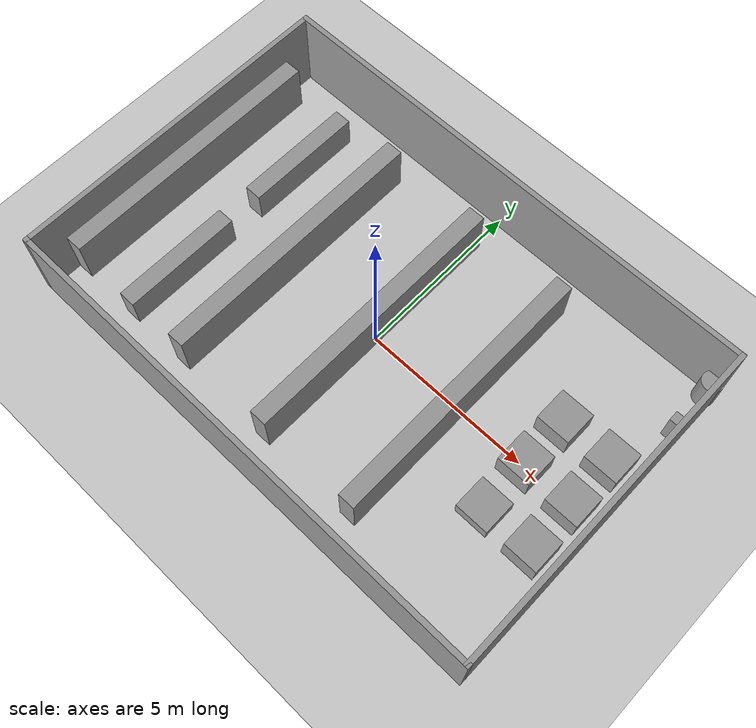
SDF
<sdf version="1.7">
 <world name="default">
  <model name="ground_plane">
   <static>1</static>
   <link name="link">
    <collision name="collision">
     <geometry><plane><normal>0 0 1</normal><size>100 100</size></plane></geometry>
     <surface>
      <contact><collide_bitmask>65535</collide_bitmask></contact>
      <friction><ode><mu>100</mu><mu2>50</mu2></ode></friction>
     </surface>
    </collision>
    <visual name="visual">
     <cast_shadows>0</cast_shadows>
     <geometry><plane><normal>0 0 1</normal><size>100 100</size></plane></geometry>
     <material>
      <script><uri>file://media/materials/scripts/gazebo.material</uri><name>Gazebo/Grey</name></script>
     </material>
    </visual>
   </link>
  </model>
  <model name="model_wall">
   <link name="Wall_0">
    <collision name="Wall_0_Collision">
     <geometry><box><size>10 0.15 2.5</size></box></geometry>
     <pose>0 0 1.25 0 -0 0</pose>
    </collision>
    <visual name="Wall_0_Visual">
     <pose>0 0 1.25 0 -0 0</pose>
     <geometry><box><size>10 0.15 2.5</size></box></geometry>
     <material>
      <script><uri>file://media/materials/scripts/gazebo.material</uri><name>Gazebo/Grey</name></script>
      <ambient>1 1 1 1</ambient>
     </material>
     <meta><layer>0</layer></meta>
    </visual>
    <pose>-7.425 0 0 0 -0 1.5708</pose>
   </link>
   <link name="Wall_4">
    <collision name="Wall_4_Collision">
     <geometry><box><size>15 0.15 2.5</size></box></geometry>
     <pose>0 0 1.25 0 -0 0</pose>
    </collision>
    <visual name="Wall_4_Visual">
     <pose>0 0 1.25 0 -0 0</pose>
     <geometry><box><size>15 0.15 2.5</size></box></geometry>
     <material>
      <script><uri>file://media/materials/scripts/gazebo.material</uri><name>Gazebo/Grey</name></script>
      <ambient>1 1 1 1</ambient>
     </material>
     <meta><layer>0</layer></meta>
    </visual>
    <pose>0 4.925 0 0 -0 0</pose>
   </link>
   <link name="Wall_7">
    <collision name="Wall_7_Collision">
     <geometry><box><size>10 0.15 2.5</size></box></geometry>
     <pose>0 0 1.25 0 -0 0</pose>
    </collision>
    <visual name="Wall_7_Visual">
     <pose>0 0 1.25 0 -0 0</pose>
     <geometry><box><size>10 0.15 2.5</size></box></geometry>
     <material>
      <script><uri>file://media/materials/scripts/gazebo.material</uri><name>Gazebo/Grey</name></script>
      <ambient>1 1 1 1</ambient>
     </material>
     <meta><layer>0</layer></meta>
    </visual>
    <pose>7.425 0 0 0 -0 -1.5708</pose>
   </link>
   <link name="Wall_8">
    <collision name="Wall_8_Collision">
     <geometry><box><size>15 0.15 2.5</size></box></geometry>
     <pose>0 0 1.25 0 -0 0</pose>
    </collision>
    <visual name="Wall_8_Visual">
     <pose>0 0 1.25 0 -0 0</pose>
     <geometry><box><size>15 0.15 2.5</size></box></geometry>
     <material>
      <script><uri>file://media/materials/scripts/gazebo.material</uri><name>Gazebo/Grey</name></script>
      <ambient>1 1 1 1</ambient>
     </material>
     <meta><layer>0</layer></meta>
    </visual>
    <pose>0 -4.925 0 0 -0 3.14159</pose>
   </link>
   <static>1</static>
  </model>
  <model name="Untitled">
   <link name="link_0">
    <inertial>
     <mass>1000</mass>
     <inertia><ixx>1666.67</ixx><ixy>0</ixy><ixz>0</ixz><iyy>1666.67</iyy><iyz>0</iyz><izz>1666.67</izz></inertia>
    </inertial>
    <pose>-7.1 0 0.75 0 -0 0</pose>
    <visual name="visual">
     <geometry><box><size>0.5 8 1.5</size></box></geometry>
     <material>
      <lighting>1</lighting>
      <script><uri>file://media/materials/scripts/gazebo.material</uri><name>Gazebo/Grey</name></script>
      <shader type="pixel"><normal_map>__default__</normal_map></shader>
      <ambient>0.3 0.3 0.3 1</ambient>
      <diffuse>0.7 0.7 0.7 1</diffuse>
      <specular>0.01 0.01 0.01 1</specular>
      <emissive>0 0 0 1</emissive>
     </material>
    </visual>
    <collision name="collision">
     <geometry><box><size>0.5 8 1.5</size></box></geometry>
     <surface>
      <friction>
       <ode><mu>1</mu><mu2>1</mu2><fdir1>0 0 0</fdir1><slip1>1</slip1><slip2>1</slip2></ode>
       <torsional>
        <coefficient>1</coefficient>
        <patch_radius>0</patch_radius>
        <surface_radius>0</surface_radius>
        <use_patch_radius>1</use_patch_radius>
        <ode><slip>0</slip></ode>
       </torsional>
      </friction>
      <bounce><restitution_coefficient>0</restitution_coefficient><threshold>1e+06</threshold></bounce>
      <contact>
       <collide_without_contact>0</collide_without_contact>
       <collide_without_contact_bitmask>1</collide_without_contact_bitmask>
       <collide_bitmask>1</collide_bitmask>
       <ode>
        <soft_cfm>0</soft_cfm>
        <soft_erp>0.2</soft_erp>
        <kp>1e+13</kp>
        <kd>1</kd>
        <max_vel>0.01</max_vel>
        <min_depth>0</min_depth>
       </ode>
       <bullet>
        <split_impulse>1</split_impulse>
        <split_impulse_penetration_threshold>-0.01</split_impulse_penetration_threshold>
        <soft_cfm>0</soft_cfm>
        <soft_erp>0.2</soft_erp>
        <kp>1e+13</kp>
        <kd>1</kd>
       </bullet>
      </contact>
     </surface>
    </collision>
   </link>
   <link name="link_1">
    <inertial>
     <mass>1000</mass>
     <inertia><ixx>1666.67</ixx><ixy>0</ixy><ixz>0</ixz><iyy>1666.67</iyy><iyz>0</iyz><izz>1666.67</izz></inertia>
    </inertial>
    <pose>-5.125 2.25 0.5 0 -0 0</pose>
    <visual name="visual">
     <geometry><box><size>0.5 3.5 1</size></box></geometry>
     <material>
      <lighting>1</lighting>
      <script><uri>file://media/materials/scripts/gazebo.material</uri><name>Gazebo/Grey</name></script>
      <shader type="pixel"><normal_map>__default__</normal_map></shader>
      <ambient>0.3 0.3 0.3 1</ambient>
      <diffuse>0.7 0.7 0.7 1</diffuse>
      <specular>0.01 0.01 0.01 1</specular>
      <emissive>0 0 0 1</emissive>
     </material>
    </visual>
    <collision name="collision">
     <geometry><box><size>0.5 3.5 1</size></box></geometry>
     <surface>
      <friction>
       <ode><mu>1</mu><mu2>1</mu2><fdir1>0 0 0</fdir1><slip1>1</slip1><slip2>1</slip2></ode>
       <torsional>
        <coefficient>1</coefficient>
        <patch_radius>0</patch_radius>
        <surface_radius>0</surface_radius>
        <use_patch_radius>1</use_patch_radius>
        <ode><slip>0</slip></ode>
       </torsional>
      </friction>
      <bounce><restitution_coefficient>0</restitution_coefficient><threshold>1e+06</threshold></bounce>
      <contact>
       <collide_without_contact>0</collide_without_contact>
       <collide_without_contact_bitmask>1</collide_without_contact_bitmask>
       <collide_bitmask>1</collide_bitmask>
       <ode>
        <soft_cfm>0</soft_cfm>
        <soft_erp>0.2</soft_erp>
        <kp>1e+13</kp>
        <kd>1</kd>
        <max_vel>0.01</max_vel>
        <min_depth>0</min_depth>
       </ode>
       <bullet>
        <split_impulse>1</split_impulse>
        <split_impulse_penetration_threshold>-0.01</split_impulse_penetration_threshold>
        <soft_cfm>0</soft_cfm>
        <soft_erp>0.2</soft_erp>
        <kp>1e+13</kp>
        <kd>1</kd>
       </bullet>
      </contact>
     </surface>
    </collision>
   </link>
   <link name="link_10">
    <inertial>
     <mass>1000</mass>
     <inertia><ixx>1666.67</ixx><ixy>0</ixy><ixz>0</ixz><iyy>1666.67</iyy><iyz>0</iyz><izz>1666.67</izz></inertia>
    </inertial>
    <pose>5.125 -1.5 0.0375 0 -0 0</pose>
    <visual name="visual">
     <geometry><box><size>1 1 0.75</size></box></geometry>
     <material>
      <lighting>1</lighting>
      <script><uri>file://media/materials/scripts/gazebo.material</uri><name>Gazebo/Grey</name></script>
      <shader type="pixel"><normal_map>__default__</normal_map></shader>
      <ambient>0.3 0.3 0.3 1</ambient>
      <diffuse>0.7 0.7 0.7 1</diffuse>
      <specular>0.01 0.01 0.01 1</specular>
      <emissive>0 0 0 1</emissive>
     </material>
    </visual>
    <collision name="collision">
     <geometry><box><size>1 1 0.75</size></box></geometry>
     <surface>
      <friction>
       <ode><mu>1</mu><mu2>1</mu2><fdir1>0 0 0</fdir1><slip1>1</slip1><slip2>1</slip2></ode>
       <torsional>
        <coefficient>1</coefficient>
        <patch_radius>0</patch_radius>
        <surface_radius>0</surface_radius>
        <use_patch_radius>1</use_patch_radius>
        <ode><slip>0</slip></ode>
       </torsional>
      </friction>
      <bounce><restitution_coefficient>0</restitution_coefficient><threshold>1e+06</threshold></bounce>
      <contact>
       <collide_without_contact>0</collide_without_contact>
       <collide_without_contact_bitmask>1</collide_without_contact_bitmask>
       <collide_bitmask>1</collide_bitmask>
       <ode>
        <soft_cfm>0</soft_cfm>
        <soft_erp>0.2</soft_erp>
        <kp>1e+13</kp>
        <kd>1</kd>
        <max_vel>0.01</max_vel>
        <min_depth>0</min_depth>
       </ode>
       <bullet>
        <split_impulse>1</split_impulse>
        <split_impulse_penetration_threshold>-0.01</split_impulse_penetration_threshold>
        <soft_cfm>0</soft_cfm>
        <soft_erp>0.2</soft_erp>
        <kp>1e+13</kp>
        <kd>1</kd>
       </bullet>
      </contact>
     </surface>
    </collision>
   </link>
   <link name="link_11">
    <inertial>
     <mass>1000</mass>
     <inertia><ixx>1666.67</ixx><ixy>0</ixy><ixz>0</ixz><iyy>1666.67</iyy><iyz>0</iyz><izz>1666.67</izz></inertia>
    </inertial>
    <pose>6.625 -1.5 0.375 0 -0 0</pose>
    <visual name="visual">
     <geometry><box><size>1 1 0.75</size></box></geometry>
     <material>
      <lighting>1</lighting>
      <script><uri>file://media/materials/scripts/gazebo.material</uri><name>Gazebo/Grey</name></script>
      <shader type="pixel"><normal_map>__default__</normal_map></shader>
      <ambient>0.3 0.3 0.3 1</ambient>
      <diffuse>0.7 0.7 0.7 1</diffuse>
      <specular>0.01 0.01 0.01 1</specular>
      <emissive>0 0 0 1</emissive>
     </material>
    </visual>
    <collision name="collision">
     <geometry><box><size>1 1 0.75</size></box></geometry>
     <surface>
      <friction>
       <ode><mu>1</mu><mu2>1</mu2><fdir1>0 0 0</fdir1><slip1>1</slip1><slip2>1</slip2></ode>
       <torsional>
        <coefficient>1</coefficient>
        <patch_radius>0</patch_radius>
        <surface_radius>0</surface_radius>
        <use_patch_radius>1</use_patch_radius>
        <ode><slip>0</slip></ode>
       </torsional>
      </friction>
      <bounce><restitution_coefficient>0</restitution_coefficient><threshold>1e+06</threshold></bounce>
      <contact>
       <collide_without_contact>0</collide_without_contact>
       <collide_without_contact_bitmask>1</collide_without_contact_bitmask>
       <collide_bitmask>1</collide_bitmask>
       <ode>
        <soft_cfm>0</soft_cfm>
        <soft_erp>0.2</soft_erp>
        <kp>1e+13</kp>
        <kd>1</kd>
        <max_vel>0.01</max_vel>
        <min_depth>0</min_depth>
       </ode>
       <bullet>
        <split_impulse>1</split_impulse>
        <split_impulse_penetration_threshold>-0.01</split_impulse_penetration_threshold>
        <soft_cfm>0</soft_cfm>
        <soft_erp>0.2</soft_erp>
        <kp>1e+13</kp>
        <kd>1</kd>
       </bullet>
      </contact>
     </surface>
    </collision>
   </link>
   <link name="link_2">
    <inertial>
     <mass>1000</mass>
     <inertia><ixx>1666.67</ixx><ixy>0</ixy><ixz>0</ixz><iyy>1666.67</iyy><iyz>0</iyz><izz>1666.67</izz></inertia>
    </inertial>
    <pose>-5.125 -2.25 0.5 0 -0 0</pose>
    <visual name="visual">
     <geometry><box><size>0.5 3.5 1</size></box></geometry>
     <material>
      <lighting>1</lighting>
      <script><uri>file://media/materials/scripts/gazebo.material</uri><name>Gazebo/Grey</name></script>
      <shader type="pixel"><normal_map>__default__</normal_map></shader>
      <ambient>0.3 0.3 0.3 1</ambient>
      <diffuse>0.7 0.7 0.7 1</diffuse>
      <specular>0.01 0.01 0.01 1</specular>
      <emissive>0 0 0 1</emissive>
     </material>
    </visual>
    <collision name="collision">
     <geometry><box><size>0.5 3.5 1</size></box></geometry>
     <surface>
      <friction>
       <ode><mu>1</mu><mu2>1</mu2><fdir1>0 0 0</fdir1><slip1>1</slip1><slip2>1</slip2></ode>
       <torsional>
        <coefficient>1</coefficient>
        <patch_radius>0</patch_radius>
        <surface_radius>0</surface_radius>
        <use_patch_radius>1</use_patch_radius>
        <ode><slip>0</slip></ode>
       </torsional>
      </friction>
      <bounce><restitution_coefficient>0</restitution_coefficient><threshold>1e+06</threshold></bounce>
      <contact>
       <collide_without_contact>0</collide_without_contact>
       <collide_without_contact_bitmask>1</collide_without_contact_bitmask>
       <collide_bitmask>1</collide_bitmask>
       <ode>
        <soft_cfm>0</soft_cfm>
        <soft_erp>0.2</soft_erp>
        <kp>1e+13</kp>
        <kd>1</kd>
        <max_vel>0.01</max_vel>
        <min_depth>0</min_depth>
       </ode>
       <bullet>
        <split_impulse>1</split_impulse>
        <split_impulse_penetration_threshold>-0.01</split_impulse_penetration_threshold>
        <soft_cfm>0</soft_cfm>
        <soft_erp>0.2</soft_erp>
        <kp>1e+13</kp>
        <kd>1</kd>
       </bullet>
      </contact>
     </surface>
    </collision>
   </link>
   <link name="link_3">
    <inertial>
     <mass>1000</mass>
     <inertia><ixx>1666.67</ixx><ixy>0</ixy><ixz>0</ixz><iyy>1666.67</iyy><iyz>0</iyz><izz>1666.67</izz></inertia>
    </inertial>
    <pose>-3.125 0 0.75 0 -0 0</pose>
    <visual name="visual">
     <geometry><box><size>0.5 8 1.5</size></box></geometry>
     <material>
      <lighting>1</lighting>
      <script><uri>file://media/materials/scripts/gazebo.material</uri><name>Gazebo/Grey</name></script>
      <shader type="pixel"><normal_map>__default__</normal_map></shader>
      <ambient>0.3 0.3 0.3 1</ambient>
      <diffuse>0.7 0.7 0.7 1</diffuse>
      <specular>0.01 0.01 0.01 1</specular>
      <emissive>0 0 0 1</emissive>
     </material>
    </visual>
    <collision name="collision">
     <geometry><box><size>0.5 8 1.5</size></box></geometry>
     <surface>
      <friction>
       <ode><mu>1</mu><mu2>1</mu2><fdir1>0 0 0</fdir1><slip1>1</slip1><slip2>1</slip2></ode>
       <torsional>
        <coefficient>1</coefficient>
        <patch_radius>0</patch_radius>
        <surface_radius>0</surface_radius>
        <use_patch_radius>1</use_patch_radius>
        <ode><slip>0</slip></ode>
       </torsional>
      </friction>
      <bounce><restitution_coefficient>0</restitution_coefficient><threshold>1e+06</threshold></bounce>
      <contact>
       <collide_without_contact>0</collide_without_contact>
       <collide_without_contact_bitmask>1</collide_without_contact_bitmask>
       <collide_bitmask>1</collide_bitmask>
       <ode>
        <soft_cfm>0</soft_cfm>
        <soft_erp>0.2</soft_erp>
        <kp>1e+13</kp>
        <kd>1</kd>
        <max_vel>0.01</max_vel>
        <min_depth>0</min_depth>
       </ode>
       <bullet>
        <split_impulse>1</split_impulse>
        <split_impulse_penetration_threshold>-0.01</split_impulse_penetration_threshold>
        <soft_cfm>0</soft_cfm>
        <soft_erp>0.2</soft_erp>
        <kp>1e+13</kp>
        <kd>1</kd>
       </bullet>
      </contact>
     </surface>
    </collision>
   </link>
   <link name="link_4">
    <inertial>
     <mass>1000</mass>
     <inertia><ixx>1666.67</ixx><ixy>0</ixy><ixz>0</ixz><iyy>1666.67</iyy><iyz>0</iyz><izz>1666.67</izz></inertia>
    </inertial>
    <pose>-0.125 0 0.75 0 -0 0</pose>
    <visual name="visual">
     <geometry><box><size>0.5 8 1.5</size></box></geometry>
     <material>
      <lighting>1</lighting>
      <script><uri>file://media/materials/scripts/gazebo.material</uri><name>Gazebo/Grey</name></script>
      <shader type="pixel"><normal_map>__default__</normal_map></shader>
      <ambient>0.3 0.3 0.3 1</ambient>
      <diffuse>0.7 0.7 0.7 1</diffuse>
      <specular>0.01 0.01 0.01 1</specular>
      <emissive>0 0 0 1</emissive>
     </material>
    </visual>
    <collision name="collision">
     <geometry><box><size>0.5 8 1.5</size></box></geometry>
     <surface>
      <friction>
       <ode><mu>1</mu><mu2>1</mu2><fdir1>0 0 0</fdir1><slip1>1</slip1><slip2>1</slip2></ode>
       <torsional>
        <coefficient>1</coefficient>
        <patch_radius>0</patch_radius>
        <surface_radius>0</surface_radius>
        <use_patch_radius>1</use_patch_radius>
        <ode><slip>0</slip></ode>
       </torsional>
      </friction>
      <bounce><restitution_coefficient>0</restitution_coefficient><threshold>1e+06</threshold></bounce>
      <contact>
       <collide_without_contact>0</collide_without_contact>
       <collide_without_contact_bitmask>1</collide_without_contact_bitmask>
       <collide_bitmask>1</collide_bitmask>
       <ode>
        <soft_cfm>0</soft_cfm>
        <soft_erp>0.2</soft_erp>
        <kp>1e+13</kp>
        <kd>1</kd>
        <max_vel>0.01</max_vel>
        <min_depth>0</min_depth>
       </ode>
       <bullet>
        <split_impulse>1</split_impulse>
        <split_impulse_penetration_threshold>-0.01</split_impulse_penetration_threshold>
        <soft_cfm>0</soft_cfm>
        <soft_erp>0.2</soft_erp>
        <kp>1e+13</kp>
        <kd>1</kd>
       </bullet>
      </contact>
     </surface>
    </collision>
   </link>
   <link name="link_5">
    <inertial>
     <mass>1000</mass>
     <inertia><ixx>1666.67</ixx><ixy>0</ixy><ixz>0</ixz><iyy>1666.67</iyy><iyz>0</iyz><izz>1666.67</izz></inertia>
    </inertial>
    <pose>2.875 0 0.75 0 -0 0</pose>
    <visual name="visual">
     <geometry><box><size>0.5 8 1.5</size></box></geometry>
     <material>
      <lighting>1</lighting>
      <script><uri>file://media/materials/scripts/gazebo.material</uri><name>Gazebo/Grey</name></script>
      <shader type="pixel"><normal_map>__default__</normal_map></shader>
      <ambient>0.3 0.3 0.3 1</ambient>
      <diffuse>0.7 0.7 0.7 1</diffuse>
      <specular>0.01 0.01 0.01 1</specular>
      <emissive>0 0 0 1</emissive>
     </material>
    </visual>
    <collision name="collision">
     <geometry><box><size>0.5 8 1.5</size></box></geometry>
     <surface>
      <friction>
       <ode><mu>1</mu><mu2>1</mu2><fdir1>0 0 0</fdir1><slip1>1</slip1><slip2>1</slip2></ode>
       <torsional>
        <coefficient>1</coefficient>
        <patch_radius>0</patch_radius>
        <surface_radius>0</surface_radius>
        <use_patch_radius>1</use_patch_radius>
        <ode><slip>0</slip></ode>
       </torsional>
      </friction>
      <bounce><restitution_coefficient>0</restitution_coefficient><threshold>1e+06</threshold></bounce>
      <contact>
       <collide_without_contact>0</collide_without_contact>
       <collide_without_contact_bitmask>1</collide_without_contact_bitmask>
       <collide_bitmask>1</collide_bitmask>
       <ode>
        <soft_cfm>0</soft_cfm>
        <soft_erp>0.2</soft_erp>
        <kp>1e+13</kp>
        <kd>1</kd>
        <max_vel>0.01</max_vel>
        <min_depth>0</min_depth>
       </ode>
       <bullet>
        <split_impulse>1</split_impulse>
        <split_impulse_penetration_threshold>-0.01</split_impulse_penetration_threshold>
        <soft_cfm>0</soft_cfm>
        <soft_erp>0.2</soft_erp>
        <kp>1e+13</kp>
        <kd>1</kd>
       </bullet>
      </contact>
     </surface>
    </collision>
   </link>
   <link name="link_6">
    <inertial>
     <mass>1000</mass>
     <inertia><ixx>1666.67</ixx><ixy>0</ixy><ixz>0</ixz><iyy>1666.67</iyy><iyz>0</iyz><izz>1666.67</izz></inertia>
    </inertial>
    <pose>5.125 0 0.375 0 -0 0</pose>
    <visual name="visual">
     <geometry><box><size>1 1 0.75</size></box></geometry>
     <material>
      <lighting>1</lighting>
      <script><uri>file://media/materials/scripts/gazebo.material</uri><name>Gazebo/Grey</name></script>
      <shader type="pixel"><normal_map>__default__</normal_map></shader>
      <ambient>0.3 0.3 0.3 1</ambient>
      <diffuse>0.7 0.7 0.7 1</diffuse>
      <specular>0.01 0.01 0.01 1</specular>
      <emissive>0 0 0 1</emissive>
     </material>
    </visual>
    <collision name="collision">
     <geometry><box><size>1 1 0.75</size></box></geometry>
     <surface>
      <friction>
       <ode><mu>1</mu><mu2>1</mu2><fdir1>0 0 0</fdir1><slip1>1</slip1><slip2>1</slip2></ode>
       <torsional>
        <coefficient>1</coefficient>
        <patch_radius>0</patch_radius>
        <surface_radius>0</surface_radius>
        <use_patch_radius>1</use_patch_radius>
        <ode><slip>0</slip></ode>
       </torsional>
      </friction>
      <bounce><restitution_coefficient>0</restitution_coefficient><threshold>1e+06</threshold></bounce>
      <contact>
       <collide_without_contact>0</collide_without_contact>
       <collide_without_contact_bitmask>1</collide_without_contact_bitmask>
       <collide_bitmask>1</collide_bitmask>
       <ode>
        <soft_cfm>0</soft_cfm>
        <soft_erp>0.2</soft_erp>
        <kp>1e+13</kp>
        <kd>1</kd>
        <max_vel>0.01</max_vel>
        <min_depth>0</min_depth>
       </ode>
       <bullet>
        <split_impulse>1</split_impulse>
        <split_impulse_penetration_threshold>-0.01</split_impulse_penetration_threshold>
        <soft_cfm>0</soft_cfm>
        <soft_erp>0.2</soft_erp>
        <kp>1e+13</kp>
        <kd>1</kd>
       </bullet>
      </contact>
     </surface>
    </collision>
   </link>
   <link name="link_7">
    <inertial>
     <mass>1000</mass>
     <inertia><ixx>1666.67</ixx><ixy>0</ixy><ixz>0</ixz><iyy>1666.67</iyy><iyz>0</iyz><izz>1666.67</izz></inertia>
    </inertial>
    <pose>6.625 0 0.375 0 -0 0</pose>
    <visual name="visual">
     <geometry><box><size>1 1 0.75</size></box></geometry>
     <material>
      <lighting>1</lighting>
      <script><uri>file://media/materials/scripts/gazebo.material</uri><name>Gazebo/Grey</name></script>
      <shader type="pixel"><normal_map>__default__</normal_map></shader>
      <ambient>0.3 0.3 0.3 1</ambient>
      <diffuse>0.7 0.7 0.7 1</diffuse>
      <specular>0.01 0.01 0.01 1</specular>
      <emissive>0 0 0 1</emissive>
     </material>
    </visual>
    <collision name="collision">
     <geometry><box><size>1 1 0.75</size></box></geometry>
     <surface>
      <friction>
       <ode><mu>1</mu><mu2>1</mu2><fdir1>0 0 0</fdir1><slip1>1</slip1><slip2>1</slip2></ode>
       <torsional>
        <coefficient>1</coefficient>
        <patch_radius>0</patch_radius>
        <surface_radius>0</surface_radius>
        <use_patch_radius>1</use_patch_radius>
        <ode><slip>0</slip></ode>
       </torsional>
      </friction>
      <bounce><restitution_coefficient>0</restitution_coefficient><threshold>1e+06</threshold></bounce>
      <contact>
       <collide_without_contact>0</collide_without_contact>
       <collide_without_contact_bitmask>1</collide_without_contact_bitmask>
       <collide_bitmask>1</collide_bitmask>
       <ode>
        <soft_cfm>0</soft_cfm>
        <soft_erp>0.2</soft_erp>
        <kp>1e+13</kp>
        <kd>1</kd>
        <max_vel>0.01</max_vel>
        <min_depth>0</min_depth>
       </ode>
       <bullet>
        <split_impulse>1</split_impulse>
        <split_impulse_penetration_threshold>-0.01</split_impulse_penetration_threshold>
        <soft_cfm>0</soft_cfm>
        <soft_erp>0.2</soft_erp>
        <kp>1e+13</kp>
        <kd>1</kd>
       </bullet>
      </contact>
     </surface>
    </collision>
   </link>
   <link name="link_8">
    <inertial>
     <mass>1000</mass>
     <inertia><ixx>1666.67</ixx><ixy>0</ixy><ixz>0</ixz><iyy>1666.67</iyy><iyz>0</iyz><izz>1666.67</izz></inertia>
    </inertial>
    <pose>5.125 1.5 0.375 0 -0 0</pose>
    <visual name="visual">
     <geometry><box><size>1 1 0.75</size></box></geometry>
     <material>
      <lighting>1</lighting>
      <script><uri>file://media/materials/scripts/gazebo.material</uri><name>Gazebo/Grey</name></script>
      <shader type="pixel"><normal_map>__default__</normal_map></shader>
      <ambient>0.3 0.3 0.3 1</ambient>
      <diffuse>0.7 0.7 0.7 1</diffuse>
      <specular>0.01 0.01 0.01 1</specular>
      <emissive>0 0 0 1</emissive>
     </material>
    </visual>
    <collision name="collision">
     <geometry><box><size>1 1 0.75</size></box></geometry>
     <surface>
      <friction>
       <ode><mu>1</mu><mu2>1</mu2><fdir1>0 0 0</fdir1><slip1>1</slip1><slip2>1</slip2></ode>
       <torsional>
        <coefficient>1</coefficient>
        <patch_radius>0</patch_radius>
        <surface_radius>0</surface_radius>
        <use_patch_radius>1</use_patch_radius>
        <ode><slip>0</slip></ode>
       </torsional>
      </friction>
      <bounce><restitution_coefficient>0</restitution_coefficient><threshold>1e+06</threshold></bounce>
      <contact>
       <collide_without_contact>0</collide_without_contact>
       <collide_without_contact_bitmask>1</collide_without_contact_bitmask>
       <collide_bitmask>1</collide_bitmask>
       <ode>
        <soft_cfm>0</soft_cfm>
        <soft_erp>0.2</soft_erp>
        <kp>1e+13</kp>
        <kd>1</kd>
        <max_vel>0.01</max_vel>
        <min_depth>0</min_depth>
       </ode>
       <bullet>
        <split_impulse>1</split_impulse>
        <split_impulse_penetration_threshold>-0.01</split_impulse_penetration_threshold>
        <soft_cfm>0</soft_cfm>
        <soft_erp>0.2</soft_erp>
        <kp>1e+13</kp>
        <kd>1</kd>
       </bullet>
      </contact>
     </surface>
    </collision>
   </link>
   <link name="link_9">
    <inertial>
     <mass>1000</mass>
     <inertia><ixx>1666.67</ixx><ixy>0</ixy><ixz>0</ixz><iyy>1666.67</iyy><iyz>0</iyz><izz>1666.67</izz></inertia>
    </inertial>
    <pose>6.625 1.5 0.375 0 -0 0</pose>
    <visual name="visual">
     <geometry><box><size>1 1 0.75</size></box></geometry>
     <material>
      <lighting>1</lighting>
      <script><uri>file://media/materials/scripts/gazebo.material</uri><name>Gazebo/Grey</name></script>
      <shader type="pixel"><normal_map>__default__</normal_map></shader>
      <ambient>0.3 0.3 0.3 1</ambient>
      <diffuse>0.7 0.7 0.7 1</diffuse>
      <specular>0.01 0.01 0.01 1</specular>
      <emissive>0 0 0 1</emissive>
     </material>
    </visual>
    <collision name="collision">
     <geometry><box><size>1 1 0.75</size></box></geometry>
     <surface>
      <friction>
       <ode><mu>1</mu><mu2>1</mu2><fdir1>0 0 0</fdir1><slip1>1</slip1><slip2>1</slip2></ode>
       <torsional>
        <coefficient>1</coefficient>
        <patch_radius>0</patch_radius>
        <surface_radius>0</surface_radius>
        <use_patch_radius>1</use_patch_radius>
        <ode><slip>0</slip></ode>
       </torsional>
      </friction>
      <bounce><restitution_coefficient>0</restitution_coefficient><threshold>1e+06</threshold></bounce>
      <contact>
       <collide_without_contact>0</collide_without_contact>
       <collide_without_contact_bitmask>1</collide_without_contact_bitmask>
       <collide_bitmask>1</collide_bitmask>
       <ode>
        <soft_cfm>0</soft_cfm>
        <soft_erp>0.2</soft_erp>
        <kp>1e+13</kp>
        <kd>1</kd>
        <max_vel>0.01</max_vel>
        <min_depth>0</min_depth>
       </ode>
       <bullet>
        <split_impulse>1</split_impulse>
        <split_impulse_penetration_threshold>-0.01</split_impulse_penetration_threshold>
        <soft_cfm>0</soft_cfm>
        <soft_erp>0.2</soft_erp>
        <kp>1e+13</kp>
        <kd>1</kd>
       </bullet>
      </contact>
     </surface>
    </collision>
   </link>
   <static>0</static>
   <pose>1.1e-05 0.000748 -9e-06 1e-06 1e-06 3e-06</pose>
  </model>
  <model name="model_furniture">
   <link name="link_0">
    <inertial>
     <mass>1000</mass>
     <inertia><ixx>1458.33</ixx><ixy>0</ixy><ixz>0</ixz><iyy>1458.33</iyy><iyz>0</iyz><izz>1250</izz></inertia>
    </inertial>
    <pose>0.008246 0.707613 0 0 -0 0</pose>
    <visual name="visual">
     <geometry><cylinder><radius>0.3</radius><length>1</length></cylinder></geometry>
     <material>
      <lighting>1</lighting>
      <script><uri>file://media/materials/scripts/gazebo.material</uri><name>Gazebo/Grey</name></script>
      <shader type="pixel"><normal_map>__default__</normal_map></shader>
      <ambient>0.3 0.3 0.3 1</ambient>
      <diffuse>0.7 0.7 0.7 1</diffuse>
      <specular>0.01 0.01 0.01 1</specular>
      <emissive>0 0 0 1</emissive>
     </material>
    </visual>
    <collision name="collision">
     <geometry><cylinder><radius>0.3</radius><length>1</length></cylinder></geometry>
     <surface>
      <friction>
       <ode><mu>1</mu><mu2>1</mu2><fdir1>0 0 0</fdir1><slip1>1</slip1><slip2>1</slip2></ode>
       <torsional>
        <coefficient>1</coefficient>
        <patch_radius>0</patch_radius>
        <surface_radius>0</surface_radius>
        <use_patch_radius>1</use_patch_radius>
        <ode><slip>0</slip></ode>
       </torsional>
      </friction>
      <bounce><restitution_coefficient>0</restitution_coefficient><threshold>1e+06</threshold></bounce>
      <contact>
       <collide_without_contact>0</collide_without_contact>
       <collide_without_contact_bitmask>1</collide_without_contact_bitmask>
       <collide_bitmask>1</collide_bitmask>
       <ode>
        <soft_cfm>0</soft_cfm>
        <soft_erp>0.2</soft_erp>
        <kp>1e+13</kp>
        <kd>1</kd>
        <max_vel>0.01</max_vel>
        <min_depth>0</min_depth>
       </ode>
       <bullet>
        <split_impulse>1</split_impulse>
        <split_impulse_penetration_threshold>-0.01</split_impulse_penetration_threshold>
        <soft_cfm>0</soft_cfm>
        <soft_erp>0.2</soft_erp>
        <kp>1e+13</kp>
        <kd>1</kd>
       </bullet>
      </contact>
     </surface>
    </collision>
   </link>
   <link name="link_1">
    <inertial>
     <mass>1000</mass>
     <inertia><ixx>1666.67</ixx><ixy>0</ixy><ixz>0</ixz><iyy>1666.67</iyy><iyz>0</iyz><izz>1666.67</izz></inertia>
    </inertial>
    <pose>-0.008246 -0.707607 0 0 -0 0</pose>
    <visual name="visual">
     <geometry><box><size>0.3 0.3 1</size></box></geometry>
     <material>
      <lighting>1</lighting>
      <script><uri>file://media/materials/scripts/gazebo.material</uri><name>Gazebo/Grey</name></script>
      <shader type="pixel"><normal_map>__default__</normal_map></shader>
      <ambient>0.3 0.3 0.3 1</ambient>
      <diffuse>0.7 0.7 0.7 1</diffuse>
      <specular>0.01 0.01 0.01 1</specular>
      <emissive>0 0 0 1</emissive>
     </material>
    </visual>
    <collision name="collision">
     <geometry><box><size>0.3 0.3 1</size></box></geometry>
     <surface>
      <friction>
       <ode><mu>1</mu><mu2>1</mu2><fdir1>0 0 0</fdir1><slip1>1</slip1><slip2>1</slip2></ode>
       <torsional>
        <coefficient>1</coefficient>
        <patch_radius>0</patch_radius>
        <surface_radius>0</surface_radius>
        <use_patch_radius>1</use_patch_radius>
        <ode><slip>0</slip></ode>
       </torsional>
      </friction>
      <bounce><restitution_coefficient>0</restitution_coefficient><threshold>1e+06</threshold></bounce>
      <contact>
       <collide_without_contact>0</collide_without_contact>
       <collide_without_contact_bitmask>1</collide_without_contact_bitmask>
       <collide_bitmask>1</collide_bitmask>
       <ode>
        <soft_cfm>0</soft_cfm>
        <soft_erp>0.2</soft_erp>
        <kp>1e+13</kp>
        <kd>1</kd>
        <max_vel>0.01</max_vel>
        <min_depth>0</min_depth>
       </ode>
       <bullet>
        <split_impulse>1</split_impulse>
        <split_impulse_penetration_threshold>-0.01</split_impulse_penetration_threshold>
        <soft_cfm>0</soft_cfm>
        <soft_erp>0.2</soft_erp>
        <kp>1e+13</kp>
        <kd>1</kd>
       </bullet>
      </contact>
     </surface>
    </collision>
   </link>
   <static>0</static>
   <pose>7.22447 3.96843 0.5 0 -0 0</pose>
  </model>
 </world>
</sdf>
